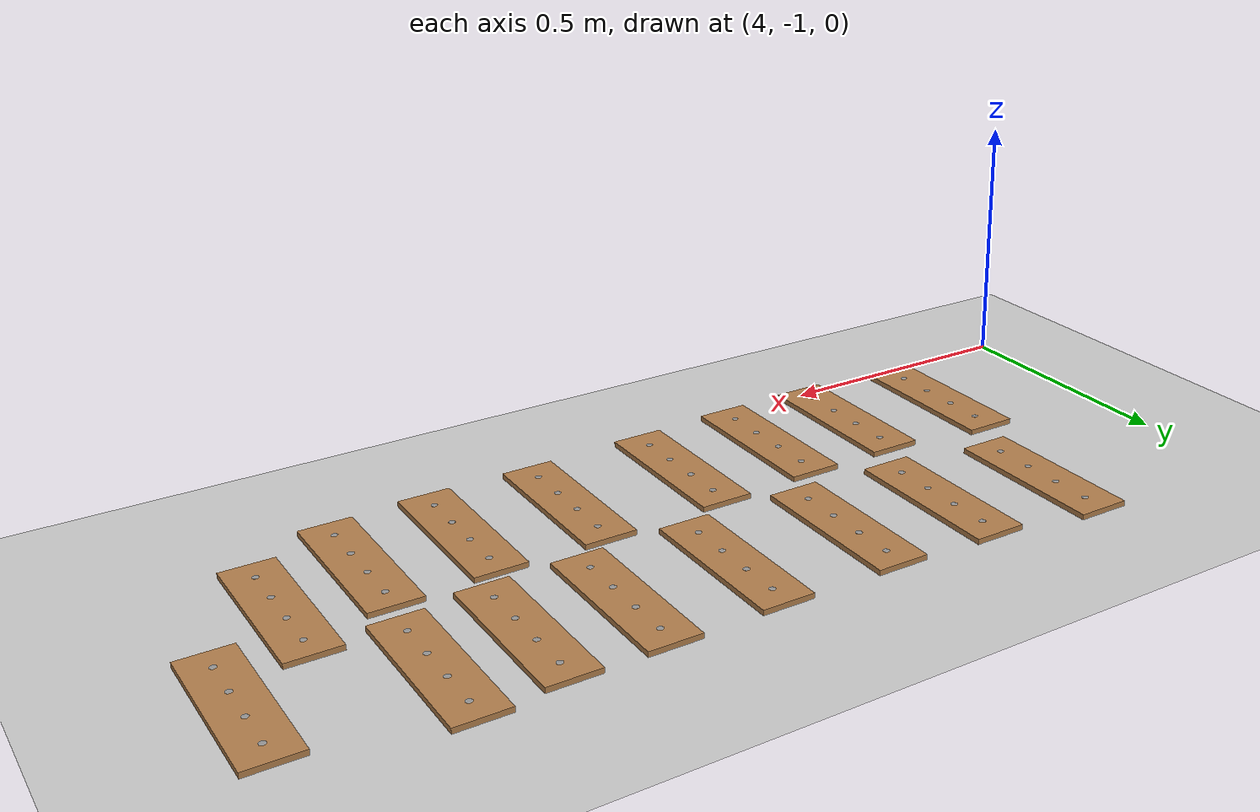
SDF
<sdf version="1.6">
 <world name="default">
  <model name="ground_plane">
   <static>1</static>
   <link name="link">
    <collision name="collision">
     <geometry><plane><normal>0 0 1</normal><size>100 100</size></plane></geometry>
     <surface><friction><ode><mu>100</mu><mu2>50</mu2></ode></friction></surface>
    </collision>
    <visual name="visual">
     <cast_shadows>0</cast_shadows>
     <geometry><plane><normal>0 0 1</normal><size>100 100</size></plane></geometry>
     <material>
      <script><uri>file://media/materials/scripts/gazebo.material</uri><name>Gazebo/Grey</name></script>
     </material>
    </visual>
   </link>
  </model>
  <model name="wooden_board">
   <link name="base">
    <pose>0 0 0.00523 0 -0 0</pose>
    <inertial>
     <mass>0.2765</mass>
     <inertia>
      <ixx>0.0025148</ixx>
      <ixy>0</ixy>
      <ixz>0</ixz>
      <iyy>0.00024037</iyy>
      <iyz>0</iyz>
      <izz>0.00275013</izz>
     </inertia>
    </inertial>
    <collision name="collision">
     <geometry><box><size>0.1016 0.3302 0.01046</size></box></geometry>
     <surface>
      <contact>
       <poissons_ratio>0.347</poissons_ratio>
       <elastic_modulus>8.8e+09</elastic_modulus>
       <ode><kp>100000</kp><kd>100</kd><max_vel>100</max_vel><min_depth>0.001</min_depth></ode>
      </contact>
      <friction>
       <torsional>
        <coefficient>1</coefficient>
        <use_patch_radius>0</use_patch_radius>
        <surface_radius>0.01</surface_radius>
       </torsional>
      </friction>
     </surface>
    </collision>
    <visual name="visual">
     <geometry><box><size>0.1016 0.3302 0.01046</size></box></geometry>
     <material>
      <script><uri>file://media/materials/scripts/gazebo.material</uri><name>Gazebo/Wood</name></script>
     </material>
    </visual>
    <visual name="tee_nut_1">
     <pose>0 -0.116 0 0 -0 0</pose>
     <geometry><cylinder><radius>0.00635</radius><length>0.0105646</length></cylinder></geometry>
     <material>
      <script><uri>file://media/materials/scripts/gazebo.material</uri><name>Gazebo/Grey</name></script>
     </material>
    </visual>
    <visual name="tee_nut_2">
     <pose>0 -0.038 0 0 -0 0</pose>
     <geometry><cylinder><radius>0.00635</radius><length>0.0105646</length></cylinder></geometry>
     <material>
      <script><uri>file://media/materials/scripts/gazebo.material</uri><name>Gazebo/Grey</name></script>
     </material>
    </visual>
    <visual name="tee_nut_3">
     <pose>0 0.038 0 0 -0 0</pose>
     <geometry><cylinder><radius>0.00635</radius><length>0.0105646</length></cylinder></geometry>
     <material>
      <script><uri>file://media/materials/scripts/gazebo.material</uri><name>Gazebo/Grey</name></script>
     </material>
    </visual>
    <visual name="tee_nut_4">
     <pose>0 0.116 0 0 -0 0</pose>
     <geometry><cylinder><radius>0.00635</radius><length>0.0105646</length></cylinder></geometry>
     <material>
      <script><uri>file://media/materials/scripts/gazebo.material</uri><name>Gazebo/Grey</name></script>
     </material>
    </visual>
   </link>
   <pose>5.40232 -0.467329 -0.001007 0 -0 0</pose>
  </model>
  <model name="wooden_board_0">
   <link name="base">
    <pose>0 0 0.00523 0 -0 0</pose>
    <inertial>
     <mass>0.2765</mass>
     <inertia>
      <ixx>0.0025148</ixx>
      <ixy>0</ixy>
      <ixz>0</ixz>
      <iyy>0.00024037</iyy>
      <iyz>0</iyz>
      <izz>0.00275013</izz>
     </inertia>
    </inertial>
    <collision name="collision">
     <geometry><box><size>0.1016 0.3302 0.01046</size></box></geometry>
     <surface>
      <contact>
       <poissons_ratio>0.347</poissons_ratio>
       <elastic_modulus>8.8e+09</elastic_modulus>
       <ode><kp>100000</kp><kd>100</kd><max_vel>100</max_vel><min_depth>0.001</min_depth></ode>
      </contact>
      <friction>
       <torsional>
        <coefficient>1</coefficient>
        <use_patch_radius>0</use_patch_radius>
        <surface_radius>0.01</surface_radius>
       </torsional>
      </friction>
     </surface>
    </collision>
    <visual name="visual">
     <geometry><box><size>0.1016 0.3302 0.01046</size></box></geometry>
     <material>
      <script><uri>file://media/materials/scripts/gazebo.material</uri><name>Gazebo/Wood</name></script>
     </material>
    </visual>
    <visual name="tee_nut_1">
     <pose>0 -0.116 0 0 -0 0</pose>
     <geometry><cylinder><radius>0.00635</radius><length>0.0105646</length></cylinder></geometry>
     <material>
      <script><uri>file://media/materials/scripts/gazebo.material</uri><name>Gazebo/Grey</name></script>
     </material>
    </visual>
    <visual name="tee_nut_2">
     <pose>0 -0.038 0 0 -0 0</pose>
     <geometry><cylinder><radius>0.00635</radius><length>0.0105646</length></cylinder></geometry>
     <material>
      <script><uri>file://media/materials/scripts/gazebo.material</uri><name>Gazebo/Grey</name></script>
     </material>
    </visual>
    <visual name="tee_nut_3">
     <pose>0 0.038 0 0 -0 0</pose>
     <geometry><cylinder><radius>0.00635</radius><length>0.0105646</length></cylinder></geometry>
     <material>
      <script><uri>file://media/materials/scripts/gazebo.material</uri><name>Gazebo/Grey</name></script>
     </material>
    </visual>
    <visual name="tee_nut_4">
     <pose>0 0.116 0 0 -0 0</pose>
     <geometry><cylinder><radius>0.00635</radius><length>0.0105646</length></cylinder></geometry>
     <material>
      <script><uri>file://media/materials/scripts/gazebo.material</uri><name>Gazebo/Grey</name></script>
     </material>
    </visual>
   </link>
   <pose>5.22375 -0.468588 -0.001007 0 -0 0</pose>
  </model>
  <model name="wooden_board_0_clone">
   <link name="base">
    <pose>0 0 0.00523 0 -0 0</pose>
    <inertial>
     <mass>0.2765</mass>
     <inertia>
      <ixx>0.0025148</ixx>
      <ixy>0</ixy>
      <ixz>0</ixz>
      <iyy>0.00024037</iyy>
      <iyz>0</iyz>
      <izz>0.00275013</izz>
     </inertia>
    </inertial>
    <collision name="collision">
     <geometry><box><size>0.1016 0.3302 0.01046</size></box></geometry>
     <surface>
      <contact>
       <poissons_ratio>0.347</poissons_ratio>
       <elastic_modulus>8.8e+09</elastic_modulus>
       <ode><kp>100000</kp><kd>100</kd><max_vel>100</max_vel><min_depth>0.001</min_depth></ode>
      </contact>
      <friction>
       <torsional>
        <coefficient>1</coefficient>
        <use_patch_radius>0</use_patch_radius>
        <surface_radius>0.01</surface_radius>
       </torsional>
      </friction>
     </surface>
    </collision>
    <visual name="visual">
     <geometry><box><size>0.1016 0.3302 0.01046</size></box></geometry>
     <material>
      <script><uri>file://media/materials/scripts/gazebo.material</uri><name>Gazebo/Wood</name></script>
     </material>
    </visual>
    <visual name="tee_nut_1">
     <pose>0 -0.116 0 0 -0 0</pose>
     <geometry><cylinder><radius>0.00635</radius><length>0.0105646</length></cylinder></geometry>
     <material>
      <script><uri>file://media/materials/scripts/gazebo.material</uri><name>Gazebo/Grey</name></script>
     </material>
    </visual>
    <visual name="tee_nut_2">
     <pose>0 -0.038 0 0 -0 0</pose>
     <geometry><cylinder><radius>0.00635</radius><length>0.0105646</length></cylinder></geometry>
     <material>
      <script><uri>file://media/materials/scripts/gazebo.material</uri><name>Gazebo/Grey</name></script>
     </material>
    </visual>
    <visual name="tee_nut_3">
     <pose>0 0.038 0 0 -0 0</pose>
     <geometry><cylinder><radius>0.00635</radius><length>0.0105646</length></cylinder></geometry>
     <material>
      <script><uri>file://media/materials/scripts/gazebo.material</uri><name>Gazebo/Grey</name></script>
     </material>
    </visual>
    <visual name="tee_nut_4">
     <pose>0 0.116 0 0 -0 0</pose>
     <geometry><cylinder><radius>0.00635</radius><length>0.0105646</length></cylinder></geometry>
     <material>
      <script><uri>file://media/materials/scripts/gazebo.material</uri><name>Gazebo/Grey</name></script>
     </material>
    </visual>
   </link>
   <pose>5.00613 -0.474185 -0.001007 0 -0 0</pose>
  </model>
  <model name="wooden_board_0_clone_0">
   <link name="base">
    <pose>0 0 0.00523 0 -0 0</pose>
    <inertial>
     <mass>0.2765</mass>
     <inertia>
      <ixx>0.0025148</ixx>
      <ixy>0</ixy>
      <ixz>0</ixz>
      <iyy>0.00024037</iyy>
      <iyz>0</iyz>
      <izz>0.00275013</izz>
     </inertia>
    </inertial>
    <collision name="collision">
     <geometry><box><size>0.1016 0.3302 0.01046</size></box></geometry>
     <surface>
      <contact>
       <poissons_ratio>0.347</poissons_ratio>
       <elastic_modulus>8.8e+09</elastic_modulus>
       <ode><kp>100000</kp><kd>100</kd><max_vel>100</max_vel><min_depth>0.001</min_depth></ode>
      </contact>
      <friction>
       <torsional>
        <coefficient>1</coefficient>
        <use_patch_radius>0</use_patch_radius>
        <surface_radius>0.01</surface_radius>
       </torsional>
      </friction>
     </surface>
    </collision>
    <visual name="visual">
     <geometry><box><size>0.1016 0.3302 0.01046</size></box></geometry>
     <material>
      <script><uri>file://media/materials/scripts/gazebo.material</uri><name>Gazebo/Wood</name></script>
     </material>
    </visual>
    <visual name="tee_nut_1">
     <pose>0 -0.116 0 0 -0 0</pose>
     <geometry><cylinder><radius>0.00635</radius><length>0.0105646</length></cylinder></geometry>
     <material>
      <script><uri>file://media/materials/scripts/gazebo.material</uri><name>Gazebo/Grey</name></script>
     </material>
    </visual>
    <visual name="tee_nut_2">
     <pose>0 -0.038 0 0 -0 0</pose>
     <geometry><cylinder><radius>0.00635</radius><length>0.0105646</length></cylinder></geometry>
     <material>
      <script><uri>file://media/materials/scripts/gazebo.material</uri><name>Gazebo/Grey</name></script>
     </material>
    </visual>
    <visual name="tee_nut_3">
     <pose>0 0.038 0 0 -0 0</pose>
     <geometry><cylinder><radius>0.00635</radius><length>0.0105646</length></cylinder></geometry>
     <material>
      <script><uri>file://media/materials/scripts/gazebo.material</uri><name>Gazebo/Grey</name></script>
     </material>
    </visual>
    <visual name="tee_nut_4">
     <pose>0 0.116 0 0 -0 0</pose>
     <geometry><cylinder><radius>0.00635</radius><length>0.0105646</length></cylinder></geometry>
     <material>
      <script><uri>file://media/materials/scripts/gazebo.material</uri><name>Gazebo/Grey</name></script>
     </material>
    </visual>
   </link>
   <pose>4.76956 -0.474346 -0.001007 0 -0 0</pose>
  </model>
  <model name="wooden_board_0_clone_1">
   <link name="base">
    <pose>0 0 0.00523 0 -0 0</pose>
    <inertial>
     <mass>0.2765</mass>
     <inertia>
      <ixx>0.0025148</ixx>
      <ixy>0</ixy>
      <ixz>0</ixz>
      <iyy>0.00024037</iyy>
      <iyz>0</iyz>
      <izz>0.00275013</izz>
     </inertia>
    </inertial>
    <collision name="collision">
     <geometry><box><size>0.1016 0.3302 0.01046</size></box></geometry>
     <surface>
      <contact>
       <poissons_ratio>0.347</poissons_ratio>
       <elastic_modulus>8.8e+09</elastic_modulus>
       <ode><kp>100000</kp><kd>100</kd><max_vel>100</max_vel><min_depth>0.001</min_depth></ode>
      </contact>
      <friction>
       <torsional>
        <coefficient>1</coefficient>
        <use_patch_radius>0</use_patch_radius>
        <surface_radius>0.01</surface_radius>
       </torsional>
      </friction>
     </surface>
    </collision>
    <visual name="visual">
     <geometry><box><size>0.1016 0.3302 0.01046</size></box></geometry>
     <material>
      <script><uri>file://media/materials/scripts/gazebo.material</uri><name>Gazebo/Wood</name></script>
     </material>
    </visual>
    <visual name="tee_nut_1">
     <pose>0 -0.116 0 0 -0 0</pose>
     <geometry><cylinder><radius>0.00635</radius><length>0.0105646</length></cylinder></geometry>
     <material>
      <script><uri>file://media/materials/scripts/gazebo.material</uri><name>Gazebo/Grey</name></script>
     </material>
    </visual>
    <visual name="tee_nut_2">
     <pose>0 -0.038 0 0 -0 0</pose>
     <geometry><cylinder><radius>0.00635</radius><length>0.0105646</length></cylinder></geometry>
     <material>
      <script><uri>file://media/materials/scripts/gazebo.material</uri><name>Gazebo/Grey</name></script>
     </material>
    </visual>
    <visual name="tee_nut_3">
     <pose>0 0.038 0 0 -0 0</pose>
     <geometry><cylinder><radius>0.00635</radius><length>0.0105646</length></cylinder></geometry>
     <material>
      <script><uri>file://media/materials/scripts/gazebo.material</uri><name>Gazebo/Grey</name></script>
     </material>
    </visual>
    <visual name="tee_nut_4">
     <pose>0 0.116 0 0 -0 0</pose>
     <geometry><cylinder><radius>0.00635</radius><length>0.0105646</length></cylinder></geometry>
     <material>
      <script><uri>file://media/materials/scripts/gazebo.material</uri><name>Gazebo/Grey</name></script>
     </material>
    </visual>
   </link>
   <pose>4.55966 -0.467129 -0.001007 0 -0 0</pose>
  </model>
  <model name="wooden_board_0_clone_2">
   <link name="base">
    <pose>0 0 0.00523 0 -0 0</pose>
    <inertial>
     <mass>0.2765</mass>
     <inertia>
      <ixx>0.0025148</ixx>
      <ixy>0</ixy>
      <ixz>0</ixz>
      <iyy>0.00024037</iyy>
      <iyz>0</iyz>
      <izz>0.00275013</izz>
     </inertia>
    </inertial>
    <collision name="collision">
     <geometry><box><size>0.1016 0.3302 0.01046</size></box></geometry>
     <surface>
      <contact>
       <poissons_ratio>0.347</poissons_ratio>
       <elastic_modulus>8.8e+09</elastic_modulus>
       <ode><kp>100000</kp><kd>100</kd><max_vel>100</max_vel><min_depth>0.001</min_depth></ode>
      </contact>
      <friction>
       <torsional>
        <coefficient>1</coefficient>
        <use_patch_radius>0</use_patch_radius>
        <surface_radius>0.01</surface_radius>
       </torsional>
      </friction>
     </surface>
    </collision>
    <visual name="visual">
     <geometry><box><size>0.1016 0.3302 0.01046</size></box></geometry>
     <material>
      <script><uri>file://media/materials/scripts/gazebo.material</uri><name>Gazebo/Wood</name></script>
     </material>
    </visual>
    <visual name="tee_nut_1">
     <pose>0 -0.116 0 0 -0 0</pose>
     <geometry><cylinder><radius>0.00635</radius><length>0.0105646</length></cylinder></geometry>
     <material>
      <script><uri>file://media/materials/scripts/gazebo.material</uri><name>Gazebo/Grey</name></script>
     </material>
    </visual>
    <visual name="tee_nut_2">
     <pose>0 -0.038 0 0 -0 0</pose>
     <geometry><cylinder><radius>0.00635</radius><length>0.0105646</length></cylinder></geometry>
     <material>
      <script><uri>file://media/materials/scripts/gazebo.material</uri><name>Gazebo/Grey</name></script>
     </material>
    </visual>
    <visual name="tee_nut_3">
     <pose>0 0.038 0 0 -0 0</pose>
     <geometry><cylinder><radius>0.00635</radius><length>0.0105646</length></cylinder></geometry>
     <material>
      <script><uri>file://media/materials/scripts/gazebo.material</uri><name>Gazebo/Grey</name></script>
     </material>
    </visual>
    <visual name="tee_nut_4">
     <pose>0 0.116 0 0 -0 0</pose>
     <geometry><cylinder><radius>0.00635</radius><length>0.0105646</length></cylinder></geometry>
     <material>
      <script><uri>file://media/materials/scripts/gazebo.material</uri><name>Gazebo/Grey</name></script>
     </material>
    </visual>
   </link>
   <pose>4.69059 -0.842906 -0.001007 0 -0 0</pose>
  </model>
  <model name="wooden_board_0_clone_3">
   <link name="base">
    <pose>0 0 0.00523 0 -0 0</pose>
    <inertial>
     <mass>0.2765</mass>
     <inertia>
      <ixx>0.0025148</ixx>
      <ixy>0</ixy>
      <ixz>0</ixz>
      <iyy>0.00024037</iyy>
      <iyz>0</iyz>
      <izz>0.00275013</izz>
     </inertia>
    </inertial>
    <collision name="collision">
     <geometry><box><size>0.1016 0.3302 0.01046</size></box></geometry>
     <surface>
      <contact>
       <poissons_ratio>0.347</poissons_ratio>
       <elastic_modulus>8.8e+09</elastic_modulus>
       <ode><kp>100000</kp><kd>100</kd><max_vel>100</max_vel><min_depth>0.001</min_depth></ode>
      </contact>
      <friction>
       <torsional>
        <coefficient>1</coefficient>
        <use_patch_radius>0</use_patch_radius>
        <surface_radius>0.01</surface_radius>
       </torsional>
      </friction>
     </surface>
    </collision>
    <visual name="visual">
     <geometry><box><size>0.1016 0.3302 0.01046</size></box></geometry>
     <material>
      <script><uri>file://media/materials/scripts/gazebo.material</uri><name>Gazebo/Wood</name></script>
     </material>
    </visual>
    <visual name="tee_nut_1">
     <pose>0 -0.116 0 0 -0 0</pose>
     <geometry><cylinder><radius>0.00635</radius><length>0.0105646</length></cylinder></geometry>
     <material>
      <script><uri>file://media/materials/scripts/gazebo.material</uri><name>Gazebo/Grey</name></script>
     </material>
    </visual>
    <visual name="tee_nut_2">
     <pose>0 -0.038 0 0 -0 0</pose>
     <geometry><cylinder><radius>0.00635</radius><length>0.0105646</length></cylinder></geometry>
     <material>
      <script><uri>file://media/materials/scripts/gazebo.material</uri><name>Gazebo/Grey</name></script>
     </material>
    </visual>
    <visual name="tee_nut_3">
     <pose>0 0.038 0 0 -0 0</pose>
     <geometry><cylinder><radius>0.00635</radius><length>0.0105646</length></cylinder></geometry>
     <material>
      <script><uri>file://media/materials/scripts/gazebo.material</uri><name>Gazebo/Grey</name></script>
     </material>
    </visual>
    <visual name="tee_nut_4">
     <pose>0 0.116 0 0 -0 0</pose>
     <geometry><cylinder><radius>0.00635</radius><length>0.0105646</length></cylinder></geometry>
     <material>
      <script><uri>file://media/materials/scripts/gazebo.material</uri><name>Gazebo/Grey</name></script>
     </material>
    </visual>
   </link>
   <pose>4.89722 -0.831247 -0.001007 0 -0 0</pose>
  </model>
  <model name="wooden_board_0_clone_4">
   <link name="base">
    <pose>0 0 0.00523 0 -0 0</pose>
    <inertial>
     <mass>0.2765</mass>
     <inertia>
      <ixx>0.0025148</ixx>
      <ixy>0</ixy>
      <ixz>0</ixz>
      <iyy>0.00024037</iyy>
      <iyz>0</iyz>
      <izz>0.00275013</izz>
     </inertia>
    </inertial>
    <collision name="collision">
     <geometry><box><size>0.1016 0.3302 0.01046</size></box></geometry>
     <surface>
      <contact>
       <poissons_ratio>0.347</poissons_ratio>
       <elastic_modulus>8.8e+09</elastic_modulus>
       <ode><kp>100000</kp><kd>100</kd><max_vel>100</max_vel><min_depth>0.001</min_depth></ode>
      </contact>
      <friction>
       <torsional>
        <coefficient>1</coefficient>
        <use_patch_radius>0</use_patch_radius>
        <surface_radius>0.01</surface_radius>
       </torsional>
      </friction>
     </surface>
    </collision>
    <visual name="visual">
     <geometry><box><size>0.1016 0.3302 0.01046</size></box></geometry>
     <material>
      <script><uri>file://media/materials/scripts/gazebo.material</uri><name>Gazebo/Wood</name></script>
     </material>
    </visual>
    <visual name="tee_nut_1">
     <pose>0 -0.116 0 0 -0 0</pose>
     <geometry><cylinder><radius>0.00635</radius><length>0.0105646</length></cylinder></geometry>
     <material>
      <script><uri>file://media/materials/scripts/gazebo.material</uri><name>Gazebo/Grey</name></script>
     </material>
    </visual>
    <visual name="tee_nut_2">
     <pose>0 -0.038 0 0 -0 0</pose>
     <geometry><cylinder><radius>0.00635</radius><length>0.0105646</length></cylinder></geometry>
     <material>
      <script><uri>file://media/materials/scripts/gazebo.material</uri><name>Gazebo/Grey</name></script>
     </material>
    </visual>
    <visual name="tee_nut_3">
     <pose>0 0.038 0 0 -0 0</pose>
     <geometry><cylinder><radius>0.00635</radius><length>0.0105646</length></cylinder></geometry>
     <material>
      <script><uri>file://media/materials/scripts/gazebo.material</uri><name>Gazebo/Grey</name></script>
     </material>
    </visual>
    <visual name="tee_nut_4">
     <pose>0 0.116 0 0 -0 0</pose>
     <geometry><cylinder><radius>0.00635</radius><length>0.0105646</length></cylinder></geometry>
     <material>
      <script><uri>file://media/materials/scripts/gazebo.material</uri><name>Gazebo/Grey</name></script>
     </material>
    </visual>
   </link>
   <pose>5.14281 -0.822973 -0.001007 0 -0 0</pose>
  </model>
  <model name="wooden_board_0_clone_5">
   <link name="base">
    <pose>0 0 0.00523 0 -0 0</pose>
    <inertial>
     <mass>0.2765</mass>
     <inertia>
      <ixx>0.0025148</ixx>
      <ixy>0</ixy>
      <ixz>0</ixz>
      <iyy>0.00024037</iyy>
      <iyz>0</iyz>
      <izz>0.00275013</izz>
     </inertia>
    </inertial>
    <collision name="collision">
     <geometry><box><size>0.1016 0.3302 0.01046</size></box></geometry>
     <surface>
      <contact>
       <poissons_ratio>0.347</poissons_ratio>
       <elastic_modulus>8.8e+09</elastic_modulus>
       <ode><kp>100000</kp><kd>100</kd><max_vel>100</max_vel><min_depth>0.001</min_depth></ode>
      </contact>
      <friction>
       <torsional>
        <coefficient>1</coefficient>
        <use_patch_radius>0</use_patch_radius>
        <surface_radius>0.01</surface_radius>
       </torsional>
      </friction>
     </surface>
    </collision>
    <visual name="visual">
     <geometry><box><size>0.1016 0.3302 0.01046</size></box></geometry>
     <material>
      <script><uri>file://media/materials/scripts/gazebo.material</uri><name>Gazebo/Wood</name></script>
     </material>
    </visual>
    <visual name="tee_nut_1">
     <pose>0 -0.116 0 0 -0 0</pose>
     <geometry><cylinder><radius>0.00635</radius><length>0.0105646</length></cylinder></geometry>
     <material>
      <script><uri>file://media/materials/scripts/gazebo.material</uri><name>Gazebo/Grey</name></script>
     </material>
    </visual>
    <visual name="tee_nut_2">
     <pose>0 -0.038 0 0 -0 0</pose>
     <geometry><cylinder><radius>0.00635</radius><length>0.0105646</length></cylinder></geometry>
     <material>
      <script><uri>file://media/materials/scripts/gazebo.material</uri><name>Gazebo/Grey</name></script>
     </material>
    </visual>
    <visual name="tee_nut_3">
     <pose>0 0.038 0 0 -0 0</pose>
     <geometry><cylinder><radius>0.00635</radius><length>0.0105646</length></cylinder></geometry>
     <material>
      <script><uri>file://media/materials/scripts/gazebo.material</uri><name>Gazebo/Grey</name></script>
     </material>
    </visual>
    <visual name="tee_nut_4">
     <pose>0 0.116 0 0 -0 0</pose>
     <geometry><cylinder><radius>0.00635</radius><length>0.0105646</length></cylinder></geometry>
     <material>
      <script><uri>file://media/materials/scripts/gazebo.material</uri><name>Gazebo/Grey</name></script>
     </material>
    </visual>
   </link>
   <pose>5.35289 -0.823348 -0.001007 0 -0 0</pose>
  </model>
  <model name="wooden_board_0_clone_6">
   <link name="base">
    <pose>0 0 0.00523 0 -0 0</pose>
    <inertial>
     <mass>0.2765</mass>
     <inertia>
      <ixx>0.0025148</ixx>
      <ixy>0</ixy>
      <ixz>0</ixz>
      <iyy>0.00024037</iyy>
      <iyz>0</iyz>
      <izz>0.00275013</izz>
     </inertia>
    </inertial>
    <collision name="collision">
     <geometry><box><size>0.1016 0.3302 0.01046</size></box></geometry>
     <surface>
      <contact>
       <poissons_ratio>0.347</poissons_ratio>
       <elastic_modulus>8.8e+09</elastic_modulus>
       <ode><kp>100000</kp><kd>100</kd><max_vel>100</max_vel><min_depth>0.001</min_depth></ode>
      </contact>
      <friction>
       <torsional>
        <coefficient>1</coefficient>
        <use_patch_radius>0</use_patch_radius>
        <surface_radius>0.01</surface_radius>
       </torsional>
      </friction>
     </surface>
    </collision>
    <visual name="visual">
     <geometry><box><size>0.1016 0.3302 0.01046</size></box></geometry>
     <material>
      <script><uri>file://media/materials/scripts/gazebo.material</uri><name>Gazebo/Wood</name></script>
     </material>
    </visual>
    <visual name="tee_nut_1">
     <pose>0 -0.116 0 0 -0 0</pose>
     <geometry><cylinder><radius>0.00635</radius><length>0.0105646</length></cylinder></geometry>
     <material>
      <script><uri>file://media/materials/scripts/gazebo.material</uri><name>Gazebo/Grey</name></script>
     </material>
    </visual>
    <visual name="tee_nut_2">
     <pose>0 -0.038 0 0 -0 0</pose>
     <geometry><cylinder><radius>0.00635</radius><length>0.0105646</length></cylinder></geometry>
     <material>
      <script><uri>file://media/materials/scripts/gazebo.material</uri><name>Gazebo/Grey</name></script>
     </material>
    </visual>
    <visual name="tee_nut_3">
     <pose>0 0.038 0 0 -0 0</pose>
     <geometry><cylinder><radius>0.00635</radius><length>0.0105646</length></cylinder></geometry>
     <material>
      <script><uri>file://media/materials/scripts/gazebo.material</uri><name>Gazebo/Grey</name></script>
     </material>
    </visual>
    <visual name="tee_nut_4">
     <pose>0 0.116 0 0 -0 0</pose>
     <geometry><cylinder><radius>0.00635</radius><length>0.0105646</length></cylinder></geometry>
     <material>
      <script><uri>file://media/materials/scripts/gazebo.material</uri><name>Gazebo/Grey</name></script>
     </material>
    </visual>
   </link>
   <pose>4.49881 -0.846323 -0.001007 0 -0 0</pose>
  </model>
  <model name="wooden_board_0_clone_7">
   <link name="base">
    <pose>0 0 0.00523 0 -0 0</pose>
    <inertial>
     <mass>0.2765</mass>
     <inertia>
      <ixx>0.0025148</ixx>
      <ixy>0</ixy>
      <ixz>0</ixz>
      <iyy>0.00024037</iyy>
      <iyz>0</iyz>
      <izz>0.00275013</izz>
     </inertia>
    </inertial>
    <collision name="collision">
     <geometry><box><size>0.1016 0.3302 0.01046</size></box></geometry>
     <surface>
      <contact>
       <poissons_ratio>0.347</poissons_ratio>
       <elastic_modulus>8.8e+09</elastic_modulus>
       <ode><kp>100000</kp><kd>100</kd><max_vel>100</max_vel><min_depth>0.001</min_depth></ode>
      </contact>
      <friction>
       <torsional>
        <coefficient>1</coefficient>
        <use_patch_radius>0</use_patch_radius>
        <surface_radius>0.01</surface_radius>
       </torsional>
      </friction>
     </surface>
    </collision>
    <visual name="visual">
     <geometry><box><size>0.1016 0.3302 0.01046</size></box></geometry>
     <material>
      <script><uri>file://media/materials/scripts/gazebo.material</uri><name>Gazebo/Wood</name></script>
     </material>
    </visual>
    <visual name="tee_nut_1">
     <pose>0 -0.116 0 0 -0 0</pose>
     <geometry><cylinder><radius>0.00635</radius><length>0.0105646</length></cylinder></geometry>
     <material>
      <script><uri>file://media/materials/scripts/gazebo.material</uri><name>Gazebo/Grey</name></script>
     </material>
    </visual>
    <visual name="tee_nut_2">
     <pose>0 -0.038 0 0 -0 0</pose>
     <geometry><cylinder><radius>0.00635</radius><length>0.0105646</length></cylinder></geometry>
     <material>
      <script><uri>file://media/materials/scripts/gazebo.material</uri><name>Gazebo/Grey</name></script>
     </material>
    </visual>
    <visual name="tee_nut_3">
     <pose>0 0.038 0 0 -0 0</pose>
     <geometry><cylinder><radius>0.00635</radius><length>0.0105646</length></cylinder></geometry>
     <material>
      <script><uri>file://media/materials/scripts/gazebo.material</uri><name>Gazebo/Grey</name></script>
     </material>
    </visual>
    <visual name="tee_nut_4">
     <pose>0 0.116 0 0 -0 0</pose>
     <geometry><cylinder><radius>0.00635</radius><length>0.0105646</length></cylinder></geometry>
     <material>
      <script><uri>file://media/materials/scripts/gazebo.material</uri><name>Gazebo/Grey</name></script>
     </material>
    </visual>
   </link>
   <pose>4.27452 -0.821599 -0.001007 0 -0 0</pose>
  </model>
  <model name="wooden_board_0_clone_8">
   <link name="base">
    <pose>0 0 0.00523 0 -0 0</pose>
    <inertial>
     <mass>0.2765</mass>
     <inertia>
      <ixx>0.0025148</ixx>
      <ixy>0</ixy>
      <ixz>0</ixz>
      <iyy>0.00024037</iyy>
      <iyz>0</iyz>
      <izz>0.00275013</izz>
     </inertia>
    </inertial>
    <collision name="collision">
     <geometry><box><size>0.1016 0.3302 0.01046</size></box></geometry>
     <surface>
      <contact>
       <poissons_ratio>0.347</poissons_ratio>
       <elastic_modulus>8.8e+09</elastic_modulus>
       <ode><kp>100000</kp><kd>100</kd><max_vel>100</max_vel><min_depth>0.001</min_depth></ode>
      </contact>
      <friction>
       <torsional>
        <coefficient>1</coefficient>
        <use_patch_radius>0</use_patch_radius>
        <surface_radius>0.01</surface_radius>
       </torsional>
      </friction>
     </surface>
    </collision>
    <visual name="visual">
     <geometry><box><size>0.1016 0.3302 0.01046</size></box></geometry>
     <material>
      <script><uri>file://media/materials/scripts/gazebo.material</uri><name>Gazebo/Wood</name></script>
     </material>
    </visual>
    <visual name="tee_nut_1">
     <pose>0 -0.116 0 0 -0 0</pose>
     <geometry><cylinder><radius>0.00635</radius><length>0.0105646</length></cylinder></geometry>
     <material>
      <script><uri>file://media/materials/scripts/gazebo.material</uri><name>Gazebo/Grey</name></script>
     </material>
    </visual>
    <visual name="tee_nut_2">
     <pose>0 -0.038 0 0 -0 0</pose>
     <geometry><cylinder><radius>0.00635</radius><length>0.0105646</length></cylinder></geometry>
     <material>
      <script><uri>file://media/materials/scripts/gazebo.material</uri><name>Gazebo/Grey</name></script>
     </material>
    </visual>
    <visual name="tee_nut_3">
     <pose>0 0.038 0 0 -0 0</pose>
     <geometry><cylinder><radius>0.00635</radius><length>0.0105646</length></cylinder></geometry>
     <material>
      <script><uri>file://media/materials/scripts/gazebo.material</uri><name>Gazebo/Grey</name></script>
     </material>
    </visual>
    <visual name="tee_nut_4">
     <pose>0 0.116 0 0 -0 0</pose>
     <geometry><cylinder><radius>0.00635</radius><length>0.0105646</length></cylinder></geometry>
     <material>
      <script><uri>file://media/materials/scripts/gazebo.material</uri><name>Gazebo/Grey</name></script>
     </material>
    </visual>
   </link>
   <pose>4.34168 -0.435043 -0.001007 0 -0 0</pose>
  </model>
  <model name="wooden_board_0_clone_9">
   <link name="base">
    <pose>0 0 0.00523 0 -0 0</pose>
    <inertial>
     <mass>0.2765</mass>
     <inertia>
      <ixx>0.0025148</ixx>
      <ixy>0</ixy>
      <ixz>0</ixz>
      <iyy>0.00024037</iyy>
      <iyz>0</iyz>
      <izz>0.00275013</izz>
     </inertia>
    </inertial>
    <collision name="collision">
     <geometry><box><size>0.1016 0.3302 0.01046</size></box></geometry>
     <surface>
      <contact>
       <poissons_ratio>0.347</poissons_ratio>
       <elastic_modulus>8.8e+09</elastic_modulus>
       <ode><kp>100000</kp><kd>100</kd><max_vel>100</max_vel><min_depth>0.001</min_depth></ode>
      </contact>
      <friction>
       <torsional>
        <coefficient>1</coefficient>
        <use_patch_radius>0</use_patch_radius>
        <surface_radius>0.01</surface_radius>
       </torsional>
      </friction>
     </surface>
    </collision>
    <visual name="visual">
     <geometry><box><size>0.1016 0.3302 0.01046</size></box></geometry>
     <material>
      <script><uri>file://media/materials/scripts/gazebo.material</uri><name>Gazebo/Wood</name></script>
     </material>
    </visual>
    <visual name="tee_nut_1">
     <pose>0 -0.116 0 0 -0 0</pose>
     <geometry><cylinder><radius>0.00635</radius><length>0.0105646</length></cylinder></geometry>
     <material>
      <script><uri>file://media/materials/scripts/gazebo.material</uri><name>Gazebo/Grey</name></script>
     </material>
    </visual>
    <visual name="tee_nut_2">
     <pose>0 -0.038 0 0 -0 0</pose>
     <geometry><cylinder><radius>0.00635</radius><length>0.0105646</length></cylinder></geometry>
     <material>
      <script><uri>file://media/materials/scripts/gazebo.material</uri><name>Gazebo/Grey</name></script>
     </material>
    </visual>
    <visual name="tee_nut_3">
     <pose>0 0.038 0 0 -0 0</pose>
     <geometry><cylinder><radius>0.00635</radius><length>0.0105646</length></cylinder></geometry>
     <material>
      <script><uri>file://media/materials/scripts/gazebo.material</uri><name>Gazebo/Grey</name></script>
     </material>
    </visual>
    <visual name="tee_nut_4">
     <pose>0 0.116 0 0 -0 0</pose>
     <geometry><cylinder><radius>0.00635</radius><length>0.0105646</length></cylinder></geometry>
     <material>
      <script><uri>file://media/materials/scripts/gazebo.material</uri><name>Gazebo/Grey</name></script>
     </material>
    </visual>
   </link>
   <pose>5.54523 -0.812979 -0.001007 0 -0 0</pose>
  </model>
  <model name="wooden_board_0_clone_10">
   <link name="base">
    <pose>0 0 0.00523 0 -0 0</pose>
    <inertial>
     <mass>0.2765</mass>
     <inertia>
      <ixx>0.0025148</ixx>
      <ixy>0</ixy>
      <ixz>0</ixz>
      <iyy>0.00024037</iyy>
      <iyz>0</iyz>
      <izz>0.00275013</izz>
     </inertia>
    </inertial>
    <collision name="collision">
     <geometry><box><size>0.1016 0.3302 0.01046</size></box></geometry>
     <surface>
      <contact>
       <poissons_ratio>0.347</poissons_ratio>
       <elastic_modulus>8.8e+09</elastic_modulus>
       <ode><kp>100000</kp><kd>100</kd><max_vel>100</max_vel><min_depth>0.001</min_depth></ode>
      </contact>
      <friction>
       <torsional>
        <coefficient>1</coefficient>
        <use_patch_radius>0</use_patch_radius>
        <surface_radius>0.01</surface_radius>
       </torsional>
      </friction>
     </surface>
    </collision>
    <visual name="visual">
     <geometry><box><size>0.1016 0.3302 0.01046</size></box></geometry>
     <material>
      <script><uri>file://media/materials/scripts/gazebo.material</uri><name>Gazebo/Wood</name></script>
     </material>
    </visual>
    <visual name="tee_nut_1">
     <pose>0 -0.116 0 0 -0 0</pose>
     <geometry><cylinder><radius>0.00635</radius><length>0.0105646</length></cylinder></geometry>
     <material>
      <script><uri>file://media/materials/scripts/gazebo.material</uri><name>Gazebo/Grey</name></script>
     </material>
    </visual>
    <visual name="tee_nut_2">
     <pose>0 -0.038 0 0 -0 0</pose>
     <geometry><cylinder><radius>0.00635</radius><length>0.0105646</length></cylinder></geometry>
     <material>
      <script><uri>file://media/materials/scripts/gazebo.material</uri><name>Gazebo/Grey</name></script>
     </material>
    </visual>
    <visual name="tee_nut_3">
     <pose>0 0.038 0 0 -0 0</pose>
     <geometry><cylinder><radius>0.00635</radius><length>0.0105646</length></cylinder></geometry>
     <material>
      <script><uri>file://media/materials/scripts/gazebo.material</uri><name>Gazebo/Grey</name></script>
     </material>
    </visual>
    <visual name="tee_nut_4">
     <pose>0 0.116 0 0 -0 0</pose>
     <geometry><cylinder><radius>0.00635</radius><length>0.0105646</length></cylinder></geometry>
     <material>
      <script><uri>file://media/materials/scripts/gazebo.material</uri><name>Gazebo/Grey</name></script>
     </material>
    </visual>
   </link>
   <pose>5.56175 -0.447954 -0.001007 0 -0 0</pose>
  </model>
  <model name="wooden_board_0_clone_11">
   <link name="base">
    <pose>0 0 0.00523 0 -0 0</pose>
    <inertial>
     <mass>0.2765</mass>
     <inertia>
      <ixx>0.0025148</ixx>
      <ixy>0</ixy>
      <ixz>0</ixz>
      <iyy>0.00024037</iyy>
      <iyz>0</iyz>
      <izz>0.00275013</izz>
     </inertia>
    </inertial>
    <collision name="collision">
     <geometry><box><size>0.1016 0.3302 0.01046</size></box></geometry>
     <surface>
      <contact>
       <poissons_ratio>0.347</poissons_ratio>
       <elastic_modulus>8.8e+09</elastic_modulus>
       <ode><kp>100000</kp><kd>100</kd><max_vel>100</max_vel><min_depth>0.001</min_depth></ode>
      </contact>
      <friction>
       <torsional>
        <coefficient>1</coefficient>
        <use_patch_radius>0</use_patch_radius>
        <surface_radius>0.01</surface_radius>
       </torsional>
      </friction>
     </surface>
    </collision>
    <visual name="visual">
     <geometry><box><size>0.1016 0.3302 0.01046</size></box></geometry>
     <material>
      <script><uri>file://media/materials/scripts/gazebo.material</uri><name>Gazebo/Wood</name></script>
     </material>
    </visual>
    <visual name="tee_nut_1">
     <pose>0 -0.116 0 0 -0 0</pose>
     <geometry><cylinder><radius>0.00635</radius><length>0.0105646</length></cylinder></geometry>
     <material>
      <script><uri>file://media/materials/scripts/gazebo.material</uri><name>Gazebo/Grey</name></script>
     </material>
    </visual>
    <visual name="tee_nut_2">
     <pose>0 -0.038 0 0 -0 0</pose>
     <geometry><cylinder><radius>0.00635</radius><length>0.0105646</length></cylinder></geometry>
     <material>
      <script><uri>file://media/materials/scripts/gazebo.material</uri><name>Gazebo/Grey</name></script>
     </material>
    </visual>
    <visual name="tee_nut_3">
     <pose>0 0.038 0 0 -0 0</pose>
     <geometry><cylinder><radius>0.00635</radius><length>0.0105646</length></cylinder></geometry>
     <material>
      <script><uri>file://media/materials/scripts/gazebo.material</uri><name>Gazebo/Grey</name></script>
     </material>
    </visual>
    <visual name="tee_nut_4">
     <pose>0 0.116 0 0 -0 0</pose>
     <geometry><cylinder><radius>0.00635</radius><length>0.0105646</length></cylinder></geometry>
     <material>
      <script><uri>file://media/materials/scripts/gazebo.material</uri><name>Gazebo/Grey</name></script>
     </material>
    </visual>
   </link>
   <pose>5.7083 -0.743291 -0.001007 0 -0 0</pose>
  </model>
  <model name="wooden_board_0_clone_12">
   <link name="base">
    <pose>0 0 0.00523 0 -0 0</pose>
    <inertial>
     <mass>0.2765</mass>
     <inertia>
      <ixx>0.0025148</ixx>
      <ixy>0</ixy>
      <ixz>0</ixz>
      <iyy>0.00024037</iyy>
      <iyz>0</iyz>
      <izz>0.00275013</izz>
     </inertia>
    </inertial>
    <collision name="collision">
     <geometry><box><size>0.1016 0.3302 0.01046</size></box></geometry>
     <surface>
      <contact>
       <poissons_ratio>0.347</poissons_ratio>
       <elastic_modulus>8.8e+09</elastic_modulus>
       <ode><kp>100000</kp><kd>100</kd><max_vel>100</max_vel><min_depth>0.001</min_depth></ode>
      </contact>
      <friction>
       <torsional>
        <coefficient>1</coefficient>
        <use_patch_radius>0</use_patch_radius>
        <surface_radius>0.01</surface_radius>
       </torsional>
      </friction>
     </surface>
    </collision>
    <visual name="visual">
     <geometry><box><size>0.1016 0.3302 0.01046</size></box></geometry>
     <material>
      <script><uri>file://media/materials/scripts/gazebo.material</uri><name>Gazebo/Wood</name></script>
     </material>
    </visual>
    <visual name="tee_nut_1">
     <pose>0 -0.116 0 0 -0 0</pose>
     <geometry><cylinder><radius>0.00635</radius><length>0.0105646</length></cylinder></geometry>
     <material>
      <script><uri>file://media/materials/scripts/gazebo.material</uri><name>Gazebo/Grey</name></script>
     </material>
    </visual>
    <visual name="tee_nut_2">
     <pose>0 -0.038 0 0 -0 0</pose>
     <geometry><cylinder><radius>0.00635</radius><length>0.0105646</length></cylinder></geometry>
     <material>
      <script><uri>file://media/materials/scripts/gazebo.material</uri><name>Gazebo/Grey</name></script>
     </material>
    </visual>
    <visual name="tee_nut_3">
     <pose>0 0.038 0 0 -0 0</pose>
     <geometry><cylinder><radius>0.00635</radius><length>0.0105646</length></cylinder></geometry>
     <material>
      <script><uri>file://media/materials/scripts/gazebo.material</uri><name>Gazebo/Grey</name></script>
     </material>
    </visual>
    <visual name="tee_nut_4">
     <pose>0 0.116 0 0 -0 0</pose>
     <geometry><cylinder><radius>0.00635</radius><length>0.0105646</length></cylinder></geometry>
     <material>
      <script><uri>file://media/materials/scripts/gazebo.material</uri><name>Gazebo/Grey</name></script>
     </material>
    </visual>
   </link>
   <pose>5.85008 -0.510767 -0.001007 0 -0 0</pose>
  </model>
 </world>
</sdf>
